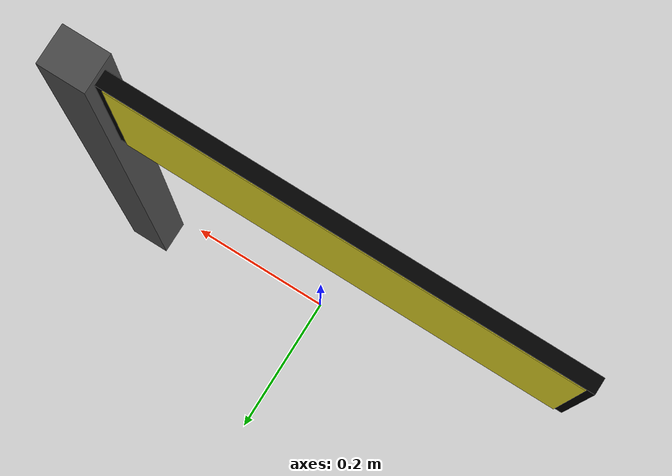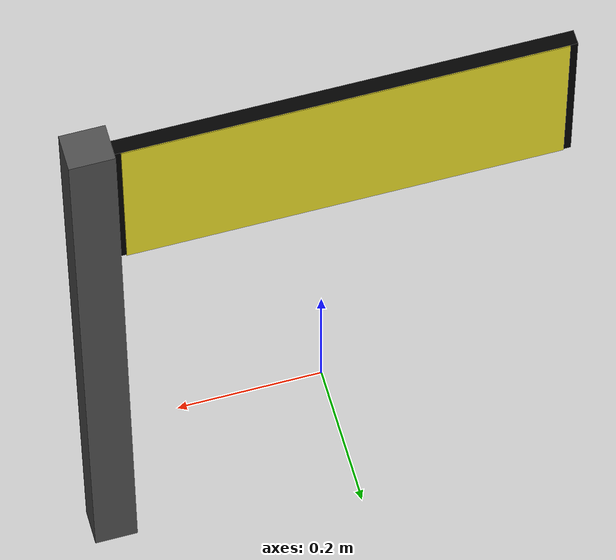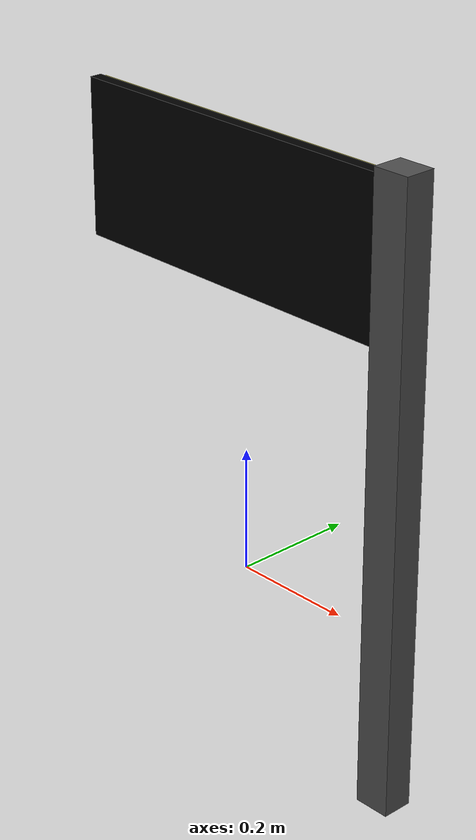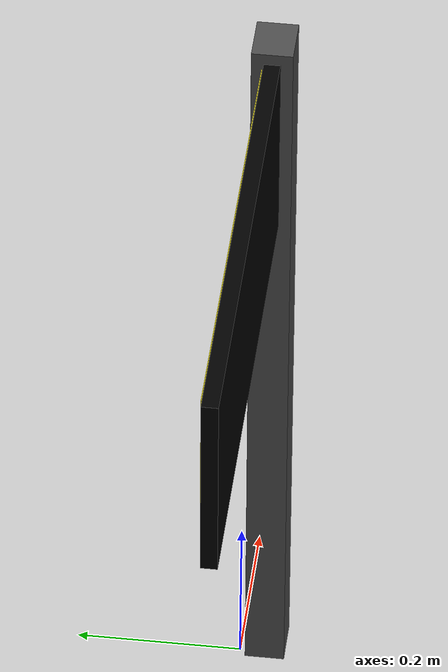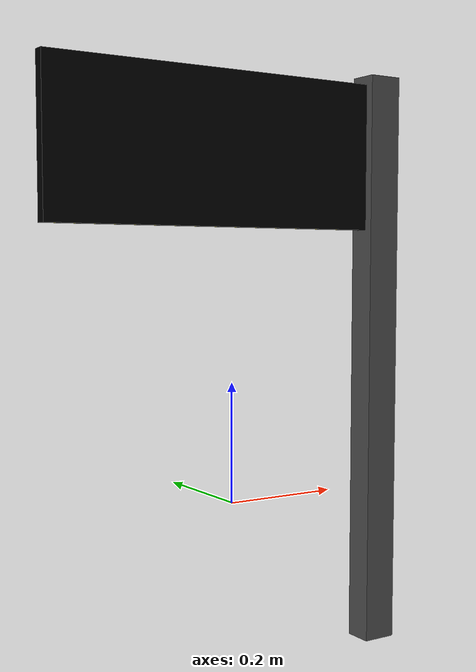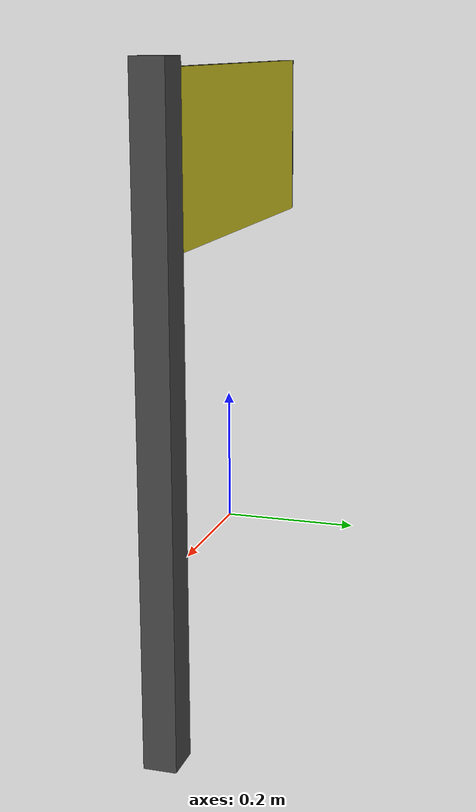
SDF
<?xml version="1.0" ?>
<sdf version="1.7">
  <model name="yellow">
    <static>true</static>

    <!-- 牌面 -->
    <link name="link">

	  <!-- 黑色底板 -->
	  <visual name="board_base">
		<pose>-0.03 0 0.58 0 0 0</pose>
		<geometry>
		  <box>
		    <size>0.60 0.02 0.25</size> <!-- 厚度稍微有 -->
		  </box>
		</geometry>
		<material>
		  <ambient>0 0 0 1</ambient>
		  <diffuse>0 0 0 1</diffuse>
		</material>
	  </visual>

	  <!-- 貼圖板（前面那層） -->
	  <visual name="board_texture">
		<!-- y +0.011 → 往外一點 -->
		<pose>-0.03 0.011 0.58 0 0 0</pose>

		<geometry>
		  <box>
		    <size>0.58 0.001 0.25</size> <!-- 很薄 -->
		  </box>
		</geometry>

		<material>
		  <script>
		    <uri>model://yellow/materials/scripts</uri>
		    <uri>model://yellow/materials/textures</uri>
		    <name>Sign/yellow</name>
		  </script>
		</material>
	  </visual>

      <!-- 偏右支柱 -->
      <collision name="pole_collision">
        <pose>0.3 0 0.22 0 0 0</pose>
        <geometry>
          <box>
            <size>0.06 0.05 0.44</size>
          </box>
        </geometry>
      </collision>

      <visual name="pole_visual">
        <pose>0.3 0 0.22 0 0 0</pose>
        <geometry>
          <box>
            <size>0.06 0.05 1</size>
          </box>
        </geometry>
        <material>
          <ambient>0.3 0.3 0.3 1</ambient>
          <diffuse>0.3 0.3 0.3 1</diffuse>
        </material>
      </visual>

    </link>
  </model>
</sdf>
